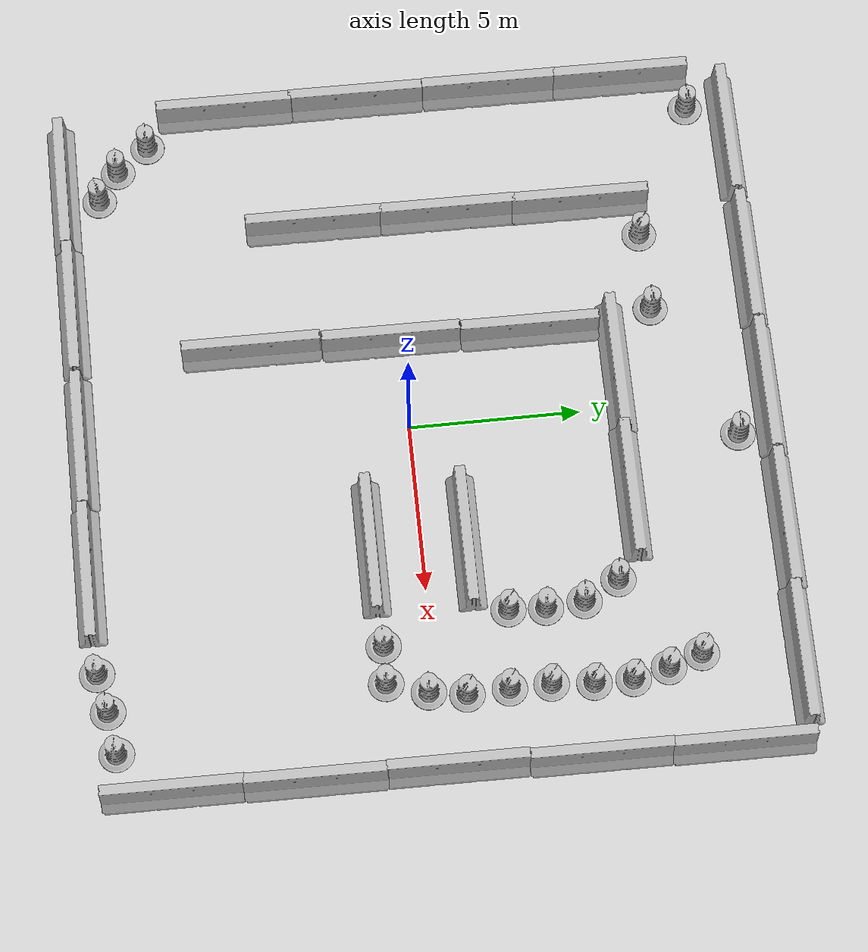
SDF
<sdf version="1.7">
 <world name="default">
  <light name="sun" type="directional">
   <pose>0 0 10 0 -0 0</pose>
   <diffuse>0.8 0.8 0.8 1</diffuse>
   <specular>0.2 0.2 0.2 1</specular>
   <attenuation>
    <range>1000</range>
    <constant>0.9</constant>
    <linear>0.01</linear>
    <quadratic>0.001</quadratic>
   </attenuation>
   <direction>-0.5 0.1 -0.9</direction>
   <spot><inner_angle>0</inner_angle><outer_angle>0</outer_angle><falloff>0</falloff></spot>
  </light>
  <model name="ground_plane">
   <static>1</static>
   <link name="link">
    <collision name="collision">
     <geometry><plane><normal>0 0 1</normal><size>100 100</size></plane></geometry>
     <surface><friction><ode><mu>100</mu><mu2>50</mu2></ode></friction></surface>
    </collision>
    <visual name="visual">
     <cast_shadows>0</cast_shadows>
     <geometry><plane><normal>0 0 1</normal><size>100 100</size></plane></geometry>
     <material>
      <script><uri>file://media/materials/scripts/gazebo.material</uri><name>Gazebo/Grey</name></script>
     </material>
    </visual>
   </link>
  </model>
  <gravity>0 0 -9.8</gravity>
  <magnetic_field>6e-06 2.3e-05 -4.2e-05</magnetic_field>
  <atmosphere type="adiabatic"/>
  <physics type="ode">
   <max_step_size>0.001</max_step_size>
   <real_time_factor>1</real_time_factor>
   <real_time_update_rate>1000</real_time_update_rate>
  </physics>
  <scene><ambient>0.4 0.4 0.4 1</ambient><background>0.7 0.7 0.7 1</background><shadows>1</shadows></scene>
  <spherical_coordinates>
   <surface_model>EARTH_WGS84</surface_model>
   <latitude_deg>0</latitude_deg>
   <longitude_deg>0</longitude_deg>
   <elevation>0</elevation>
   <heading_deg>0</heading_deg>
  </spherical_coordinates>
  <model name="Construction Barrel">
   <link name="link">
    <inertial>
     <pose>0 0 0.4 0 -0 0</pose>
     <mass>500</mass>
     <inertia><ixx>51.2096</ixx><iyy>51.2096</iyy><izz>25</izz><ixy>0</ixy><ixz>0</ixz><iyz>0</iyz></inertia>
    </inertial>
    <collision name="collision">
     <geometry><mesh><uri>model://construction_barrel/meshes/construction_barrel.dae</uri></mesh></geometry>
    </collision>
    <visual name="visual">
     <geometry><mesh><uri>model://construction_barrel/meshes/construction_barrel.dae</uri></mesh></geometry>
    </visual>
   </link>
   <pose>9.00455 -9.11137 0 0 0 -0.000247</pose>
  </model>
  <model name="Construction Barrel_0">
   <link name="link">
    <inertial>
     <pose>0 0 0.4 0 -0 0</pose>
     <mass>500</mass>
     <inertia><ixx>51.2096</ixx><iyy>51.2096</iyy><izz>25</izz><ixy>0</ixy><ixz>0</ixz><iyz>0</iyz></inertia>
    </inertial>
    <collision name="collision">
     <geometry><mesh><uri>model://construction_barrel/meshes/construction_barrel.dae</uri></mesh></geometry>
    </collision>
    <visual name="visual">
     <geometry><mesh><uri>model://construction_barrel/meshes/construction_barrel.dae</uri></mesh></geometry>
    </visual>
   </link>
   <pose>7.75315 -9.27432 0 0 0 -0.000226</pose>
  </model>
  <model name="jersey_barrier">
   <static>1</static>
   <link name="link">
    <visual name="visual">
     <geometry><mesh><uri>model://jersey_barrier/meshes/jersey_barrier.dae</uri></mesh></geometry>
    </visual>
    <collision name="upright">
     <pose>0 0 0.5715 0 -0 0</pose>
     <geometry><box><size>4.06542 0.3063 1.143</size></box></geometry>
    </collision>
    <collision name="base">
     <pose>0 0 0.032258 0 -0 0</pose>
     <geometry><box><size>4.06542 0.8107 0.064516</size></box></geometry>
    </collision>
    <collision name="base2">
     <pose>0 0 0.1 0 -0 0</pose>
     <geometry><box><size>4.06542 0.65 0.1</size></box></geometry>
    </collision>
    <collision name="base3">
     <pose>0 0 0.2 0 -0 0</pose>
     <geometry><box><size>4.06542 0.5 0.1</size></box></geometry>
    </collision>
    <collision name="left-angle">
     <pose>0 -0.224 0.2401 0.9 -0 0</pose>
     <geometry><box><size>4.06542 0.5 0.064516</size></box></geometry>
    </collision>
    <collision name="right-angle">
     <pose>0 0.224 0.2401 -0.9 0 0</pose>
     <geometry><box><size>4.06542 0.5 0.064516</size></box></geometry>
    </collision>
   </link>
   <pose>8.05184 10.4006 0 0 -0 0</pose>
  </model>
  <model name="jersey_barrier_0">
   <static>1</static>
   <link name="link">
    <visual name="visual">
     <geometry><mesh><uri>model://jersey_barrier/meshes/jersey_barrier.dae</uri></mesh></geometry>
    </visual>
    <collision name="upright">
     <pose>0 0 0.5715 0 -0 0</pose>
     <geometry><box><size>4.06542 0.3063 1.143</size></box></geometry>
    </collision>
    <collision name="base">
     <pose>0 0 0.032258 0 -0 0</pose>
     <geometry><box><size>4.06542 0.8107 0.064516</size></box></geometry>
    </collision>
    <collision name="base2">
     <pose>0 0 0.1 0 -0 0</pose>
     <geometry><box><size>4.06542 0.65 0.1</size></box></geometry>
    </collision>
    <collision name="base3">
     <pose>0 0 0.2 0 -0 0</pose>
     <geometry><box><size>4.06542 0.5 0.1</size></box></geometry>
    </collision>
    <collision name="left-angle">
     <pose>0 -0.224 0.2401 0.9 -0 0</pose>
     <geometry><box><size>4.06542 0.5 0.064516</size></box></geometry>
    </collision>
    <collision name="right-angle">
     <pose>0 0.224 0.2401 -0.9 0 0</pose>
     <geometry><box><size>4.06542 0.5 0.064516</size></box></geometry>
    </collision>
   </link>
   <pose>4.02261 10.4546 0 0 -0 0</pose>
  </model>
  <model name="jersey_barrier_0_clone">
   <static>1</static>
   <link name="link">
    <visual name="visual">
     <geometry><mesh><uri>model://jersey_barrier/meshes/jersey_barrier.dae</uri></mesh></geometry>
    </visual>
    <collision name="upright">
     <pose>0 0 0.5715 0 -0 0</pose>
     <geometry><box><size>4.06542 0.3063 1.143</size></box></geometry>
    </collision>
    <collision name="base">
     <pose>0 0 0.032258 0 -0 0</pose>
     <geometry><box><size>4.06542 0.8107 0.064516</size></box></geometry>
    </collision>
    <collision name="base2">
     <pose>0 0 0.1 0 -0 0</pose>
     <geometry><box><size>4.06542 0.65 0.1</size></box></geometry>
    </collision>
    <collision name="base3">
     <pose>0 0 0.2 0 -0 0</pose>
     <geometry><box><size>4.06542 0.5 0.1</size></box></geometry>
    </collision>
    <collision name="left-angle">
     <pose>0 -0.224 0.2401 0.9 -0 0</pose>
     <geometry><box><size>4.06542 0.5 0.064516</size></box></geometry>
    </collision>
    <collision name="right-angle">
     <pose>0 0.224 0.2401 -0.9 0 0</pose>
     <geometry><box><size>4.06542 0.5 0.064516</size></box></geometry>
    </collision>
   </link>
   <pose>-0.058648 10.4511 0 0 -0 0</pose>
  </model>
  <model name="jersey_barrier_0_clone_0">
   <static>1</static>
   <link name="link">
    <visual name="visual">
     <geometry><mesh><uri>model://jersey_barrier/meshes/jersey_barrier.dae</uri></mesh></geometry>
    </visual>
    <collision name="upright">
     <pose>0 0 0.5715 0 -0 0</pose>
     <geometry><box><size>4.06542 0.3063 1.143</size></box></geometry>
    </collision>
    <collision name="base">
     <pose>0 0 0.032258 0 -0 0</pose>
     <geometry><box><size>4.06542 0.8107 0.064516</size></box></geometry>
    </collision>
    <collision name="base2">
     <pose>0 0 0.1 0 -0 0</pose>
     <geometry><box><size>4.06542 0.65 0.1</size></box></geometry>
    </collision>
    <collision name="base3">
     <pose>0 0 0.2 0 -0 0</pose>
     <geometry><box><size>4.06542 0.5 0.1</size></box></geometry>
    </collision>
    <collision name="left-angle">
     <pose>0 -0.224 0.2401 0.9 -0 0</pose>
     <geometry><box><size>4.06542 0.5 0.064516</size></box></geometry>
    </collision>
    <collision name="right-angle">
     <pose>0 0.224 0.2401 -0.9 0 0</pose>
     <geometry><box><size>4.06542 0.5 0.064516</size></box></geometry>
    </collision>
   </link>
   <pose>-4.14054 10.4237 0 0 -0 0</pose>
  </model>
  <model name="jersey_barrier_0_clone_1">
   <static>1</static>
   <link name="link">
    <visual name="visual">
     <geometry><mesh><uri>model://jersey_barrier/meshes/jersey_barrier.dae</uri></mesh></geometry>
    </visual>
    <collision name="upright">
     <pose>0 0 0.5715 0 -0 0</pose>
     <geometry><box><size>4.06542 0.3063 1.143</size></box></geometry>
    </collision>
    <collision name="base">
     <pose>0 0 0.032258 0 -0 0</pose>
     <geometry><box><size>4.06542 0.8107 0.064516</size></box></geometry>
    </collision>
    <collision name="base2">
     <pose>0 0 0.1 0 -0 0</pose>
     <geometry><box><size>4.06542 0.65 0.1</size></box></geometry>
    </collision>
    <collision name="base3">
     <pose>0 0 0.2 0 -0 0</pose>
     <geometry><box><size>4.06542 0.5 0.1</size></box></geometry>
    </collision>
    <collision name="left-angle">
     <pose>0 -0.224 0.2401 0.9 -0 0</pose>
     <geometry><box><size>4.06542 0.5 0.064516</size></box></geometry>
    </collision>
    <collision name="right-angle">
     <pose>0 0.224 0.2401 -0.9 0 0</pose>
     <geometry><box><size>4.06542 0.5 0.064516</size></box></geometry>
    </collision>
   </link>
   <pose>-8.29169 10.3695 0 0 -0 0</pose>
  </model>
  <model name="jersey_barrier_0_clone_2">
   <static>1</static>
   <link name="link">
    <visual name="visual">
     <geometry><mesh><uri>model://jersey_barrier/meshes/jersey_barrier.dae</uri></mesh></geometry>
    </visual>
    <collision name="upright">
     <pose>0 0 0.5715 0 -0 0</pose>
     <geometry><box><size>4.06542 0.3063 1.143</size></box></geometry>
    </collision>
    <collision name="base">
     <pose>0 0 0.032258 0 -0 0</pose>
     <geometry><box><size>4.06542 0.8107 0.064516</size></box></geometry>
    </collision>
    <collision name="base2">
     <pose>0 0 0.1 0 -0 0</pose>
     <geometry><box><size>4.06542 0.65 0.1</size></box></geometry>
    </collision>
    <collision name="base3">
     <pose>0 0 0.2 0 -0 0</pose>
     <geometry><box><size>4.06542 0.5 0.1</size></box></geometry>
    </collision>
    <collision name="left-angle">
     <pose>0 -0.224 0.2401 0.9 -0 0</pose>
     <geometry><box><size>4.06542 0.5 0.064516</size></box></geometry>
    </collision>
    <collision name="right-angle">
     <pose>0 0.224 0.2401 -0.9 0 0</pose>
     <geometry><box><size>4.06542 0.5 0.064516</size></box></geometry>
    </collision>
   </link>
   <pose>3.76278 -9.55704 0 0 -0 0</pose>
  </model>
  <model name="jersey_barrier_0_clone_3">
   <static>1</static>
   <link name="link">
    <visual name="visual">
     <geometry><mesh><uri>model://jersey_barrier/meshes/jersey_barrier.dae</uri></mesh></geometry>
    </visual>
    <collision name="upright">
     <pose>0 0 0.5715 0 -0 0</pose>
     <geometry><box><size>4.06542 0.3063 1.143</size></box></geometry>
    </collision>
    <collision name="base">
     <pose>0 0 0.032258 0 -0 0</pose>
     <geometry><box><size>4.06542 0.8107 0.064516</size></box></geometry>
    </collision>
    <collision name="base2">
     <pose>0 0 0.1 0 -0 0</pose>
     <geometry><box><size>4.06542 0.65 0.1</size></box></geometry>
    </collision>
    <collision name="base3">
     <pose>0 0 0.2 0 -0 0</pose>
     <geometry><box><size>4.06542 0.5 0.1</size></box></geometry>
    </collision>
    <collision name="left-angle">
     <pose>0 -0.224 0.2401 0.9 -0 0</pose>
     <geometry><box><size>4.06542 0.5 0.064516</size></box></geometry>
    </collision>
    <collision name="right-angle">
     <pose>0 0.224 0.2401 -0.9 0 0</pose>
     <geometry><box><size>4.06542 0.5 0.064516</size></box></geometry>
    </collision>
   </link>
   <pose>-0.28043 -9.51033 0 0 -0 0</pose>
  </model>
  <model name="jersey_barrier_0_clone_4">
   <static>1</static>
   <link name="link">
    <visual name="visual">
     <geometry><mesh><uri>model://jersey_barrier/meshes/jersey_barrier.dae</uri></mesh></geometry>
    </visual>
    <collision name="upright">
     <pose>0 0 0.5715 0 -0 0</pose>
     <geometry><box><size>4.06542 0.3063 1.143</size></box></geometry>
    </collision>
    <collision name="base">
     <pose>0 0 0.032258 0 -0 0</pose>
     <geometry><box><size>4.06542 0.8107 0.064516</size></box></geometry>
    </collision>
    <collision name="base2">
     <pose>0 0 0.1 0 -0 0</pose>
     <geometry><box><size>4.06542 0.65 0.1</size></box></geometry>
    </collision>
    <collision name="base3">
     <pose>0 0 0.2 0 -0 0</pose>
     <geometry><box><size>4.06542 0.5 0.1</size></box></geometry>
    </collision>
    <collision name="left-angle">
     <pose>0 -0.224 0.2401 0.9 -0 0</pose>
     <geometry><box><size>4.06542 0.5 0.064516</size></box></geometry>
    </collision>
    <collision name="right-angle">
     <pose>0 0.224 0.2401 -0.9 0 0</pose>
     <geometry><box><size>4.06542 0.5 0.064516</size></box></geometry>
    </collision>
   </link>
   <pose>-4.42024 -9.49945 0 0 -0 0</pose>
  </model>
  <model name="jersey_barrier_0_clone_5">
   <static>1</static>
   <link name="link">
    <visual name="visual">
     <geometry><mesh><uri>model://jersey_barrier/meshes/jersey_barrier.dae</uri></mesh></geometry>
    </visual>
    <collision name="upright">
     <pose>0 0 0.5715 0 -0 0</pose>
     <geometry><box><size>4.06542 0.3063 1.143</size></box></geometry>
    </collision>
    <collision name="base">
     <pose>0 0 0.032258 0 -0 0</pose>
     <geometry><box><size>4.06542 0.8107 0.064516</size></box></geometry>
    </collision>
    <collision name="base2">
     <pose>0 0 0.1 0 -0 0</pose>
     <geometry><box><size>4.06542 0.65 0.1</size></box></geometry>
    </collision>
    <collision name="base3">
     <pose>0 0 0.2 0 -0 0</pose>
     <geometry><box><size>4.06542 0.5 0.1</size></box></geometry>
    </collision>
    <collision name="left-angle">
     <pose>0 -0.224 0.2401 0.9 -0 0</pose>
     <geometry><box><size>4.06542 0.5 0.064516</size></box></geometry>
    </collision>
    <collision name="right-angle">
     <pose>0 0.224 0.2401 -0.9 0 0</pose>
     <geometry><box><size>4.06542 0.5 0.064516</size></box></geometry>
    </collision>
   </link>
   <pose>-8.44492 -9.51984 0 0 -0 0</pose>
  </model>
  <model name="jersey_barrier_0_clone_1_clone">
   <static>1</static>
   <link name="link">
    <visual name="visual">
     <geometry><mesh><uri>model://jersey_barrier/meshes/jersey_barrier.dae</uri></mesh></geometry>
    </visual>
    <collision name="upright">
     <pose>0 0 0.5715 0 -0 0</pose>
     <geometry><box><size>4.06542 0.3063 1.143</size></box></geometry>
    </collision>
    <collision name="base">
     <pose>0 0 0.032258 0 -0 0</pose>
     <geometry><box><size>4.06542 0.8107 0.064516</size></box></geometry>
    </collision>
    <collision name="base2">
     <pose>0 0 0.1 0 -0 0</pose>
     <geometry><box><size>4.06542 0.65 0.1</size></box></geometry>
    </collision>
    <collision name="base3">
     <pose>0 0 0.2 0 -0 0</pose>
     <geometry><box><size>4.06542 0.5 0.1</size></box></geometry>
    </collision>
    <collision name="left-angle">
     <pose>0 -0.224 0.2401 0.9 -0 0</pose>
     <geometry><box><size>4.06542 0.5 0.064516</size></box></geometry>
    </collision>
    <collision name="right-angle">
     <pose>0 0.224 0.2401 -0.9 0 0</pose>
     <geometry><box><size>4.06542 0.5 0.064516</size></box></geometry>
    </collision>
   </link>
   <pose>-10.5208 7.37351 0 0 0 -1.57607</pose>
  </model>
  <model name="jersey_barrier_0_clone_1_clone_clone">
   <static>1</static>
   <link name="link">
    <visual name="visual">
     <geometry><mesh><uri>model://jersey_barrier/meshes/jersey_barrier.dae</uri></mesh></geometry>
    </visual>
    <collision name="upright">
     <pose>0 0 0.5715 0 -0 0</pose>
     <geometry><box><size>4.06542 0.3063 1.143</size></box></geometry>
    </collision>
    <collision name="base">
     <pose>0 0 0.032258 0 -0 0</pose>
     <geometry><box><size>4.06542 0.8107 0.064516</size></box></geometry>
    </collision>
    <collision name="base2">
     <pose>0 0 0.1 0 -0 0</pose>
     <geometry><box><size>4.06542 0.65 0.1</size></box></geometry>
    </collision>
    <collision name="base3">
     <pose>0 0 0.2 0 -0 0</pose>
     <geometry><box><size>4.06542 0.5 0.1</size></box></geometry>
    </collision>
    <collision name="left-angle">
     <pose>0 -0.224 0.2401 0.9 -0 0</pose>
     <geometry><box><size>4.06542 0.5 0.064516</size></box></geometry>
    </collision>
    <collision name="right-angle">
     <pose>0 0.224 0.2401 -0.9 0 0</pose>
     <geometry><box><size>4.06542 0.5 0.064516</size></box></geometry>
    </collision>
   </link>
   <pose>-10.5437 3.41102 0 0 0 -1.57607</pose>
  </model>
  <model name="jersey_barrier_0_clone_1_clone_clone_0">
   <static>1</static>
   <link name="link">
    <visual name="visual">
     <geometry><mesh><uri>model://jersey_barrier/meshes/jersey_barrier.dae</uri></mesh></geometry>
    </visual>
    <collision name="upright">
     <pose>0 0 0.5715 0 -0 0</pose>
     <geometry><box><size>4.06542 0.3063 1.143</size></box></geometry>
    </collision>
    <collision name="base">
     <pose>0 0 0.032258 0 -0 0</pose>
     <geometry><box><size>4.06542 0.8107 0.064516</size></box></geometry>
    </collision>
    <collision name="base2">
     <pose>0 0 0.1 0 -0 0</pose>
     <geometry><box><size>4.06542 0.65 0.1</size></box></geometry>
    </collision>
    <collision name="base3">
     <pose>0 0 0.2 0 -0 0</pose>
     <geometry><box><size>4.06542 0.5 0.1</size></box></geometry>
    </collision>
    <collision name="left-angle">
     <pose>0 -0.224 0.2401 0.9 -0 0</pose>
     <geometry><box><size>4.06542 0.5 0.064516</size></box></geometry>
    </collision>
    <collision name="right-angle">
     <pose>0 0.224 0.2401 -0.9 0 0</pose>
     <geometry><box><size>4.06542 0.5 0.064516</size></box></geometry>
    </collision>
   </link>
   <pose>-10.5487 -0.603088 0 0 0 -1.57607</pose>
  </model>
  <model name="jersey_barrier_0_clone_1_clone_clone_1">
   <static>1</static>
   <link name="link">
    <visual name="visual">
     <geometry><mesh><uri>model://jersey_barrier/meshes/jersey_barrier.dae</uri></mesh></geometry>
    </visual>
    <collision name="upright">
     <pose>0 0 0.5715 0 -0 0</pose>
     <geometry><box><size>4.06542 0.3063 1.143</size></box></geometry>
    </collision>
    <collision name="base">
     <pose>0 0 0.032258 0 -0 0</pose>
     <geometry><box><size>4.06542 0.8107 0.064516</size></box></geometry>
    </collision>
    <collision name="base2">
     <pose>0 0 0.1 0 -0 0</pose>
     <geometry><box><size>4.06542 0.65 0.1</size></box></geometry>
    </collision>
    <collision name="base3">
     <pose>0 0 0.2 0 -0 0</pose>
     <geometry><box><size>4.06542 0.5 0.1</size></box></geometry>
    </collision>
    <collision name="left-angle">
     <pose>0 -0.224 0.2401 0.9 -0 0</pose>
     <geometry><box><size>4.06542 0.5 0.064516</size></box></geometry>
    </collision>
    <collision name="right-angle">
     <pose>0 0.224 0.2401 -0.9 0 0</pose>
     <geometry><box><size>4.06542 0.5 0.064516</size></box></geometry>
    </collision>
   </link>
   <pose>-10.5572 -4.54183 0 0 0 -1.57607</pose>
  </model>
  <model name="jersey_barrier_0_clone_1_clone_clone_2">
   <static>1</static>
   <link name="link">
    <visual name="visual">
     <geometry><mesh><uri>model://jersey_barrier/meshes/jersey_barrier.dae</uri></mesh></geometry>
    </visual>
    <collision name="upright">
     <pose>0 0 0.5715 0 -0 0</pose>
     <geometry><box><size>4.06542 0.3063 1.143</size></box></geometry>
    </collision>
    <collision name="base">
     <pose>0 0 0.032258 0 -0 0</pose>
     <geometry><box><size>4.06542 0.8107 0.064516</size></box></geometry>
    </collision>
    <collision name="base2">
     <pose>0 0 0.1 0 -0 0</pose>
     <geometry><box><size>4.06542 0.65 0.1</size></box></geometry>
    </collision>
    <collision name="base3">
     <pose>0 0 0.2 0 -0 0</pose>
     <geometry><box><size>4.06542 0.5 0.1</size></box></geometry>
    </collision>
    <collision name="left-angle">
     <pose>0 -0.224 0.2401 0.9 -0 0</pose>
     <geometry><box><size>4.06542 0.5 0.064516</size></box></geometry>
    </collision>
    <collision name="right-angle">
     <pose>0 0.224 0.2401 -0.9 0 0</pose>
     <geometry><box><size>4.06542 0.5 0.064516</size></box></geometry>
    </collision>
   </link>
   <pose>10.4542 8.41983 0 0 0 -1.57607</pose>
  </model>
  <model name="jersey_barrier_0_clone_1_clone_clone_3">
   <static>1</static>
   <link name="link">
    <visual name="visual">
     <geometry><mesh><uri>model://jersey_barrier/meshes/jersey_barrier.dae</uri></mesh></geometry>
    </visual>
    <collision name="upright">
     <pose>0 0 0.5715 0 -0 0</pose>
     <geometry><box><size>4.06542 0.3063 1.143</size></box></geometry>
    </collision>
    <collision name="base">
     <pose>0 0 0.032258 0 -0 0</pose>
     <geometry><box><size>4.06542 0.8107 0.064516</size></box></geometry>
    </collision>
    <collision name="base2">
     <pose>0 0 0.1 0 -0 0</pose>
     <geometry><box><size>4.06542 0.65 0.1</size></box></geometry>
    </collision>
    <collision name="base3">
     <pose>0 0 0.2 0 -0 0</pose>
     <geometry><box><size>4.06542 0.5 0.1</size></box></geometry>
    </collision>
    <collision name="left-angle">
     <pose>0 -0.224 0.2401 0.9 -0 0</pose>
     <geometry><box><size>4.06542 0.5 0.064516</size></box></geometry>
    </collision>
    <collision name="right-angle">
     <pose>0 0.224 0.2401 -0.9 0 0</pose>
     <geometry><box><size>4.06542 0.5 0.064516</size></box></geometry>
    </collision>
   </link>
   <pose>10.4118 4.41634 0 0 0 -1.57607</pose>
  </model>
  <model name="jersey_barrier_0_clone_1_clone_clone_4">
   <static>1</static>
   <link name="link">
    <visual name="visual">
     <geometry><mesh><uri>model://jersey_barrier/meshes/jersey_barrier.dae</uri></mesh></geometry>
    </visual>
    <collision name="upright">
     <pose>0 0 0.5715 0 -0 0</pose>
     <geometry><box><size>4.06542 0.3063 1.143</size></box></geometry>
    </collision>
    <collision name="base">
     <pose>0 0 0.032258 0 -0 0</pose>
     <geometry><box><size>4.06542 0.8107 0.064516</size></box></geometry>
    </collision>
    <collision name="base2">
     <pose>0 0 0.1 0 -0 0</pose>
     <geometry><box><size>4.06542 0.65 0.1</size></box></geometry>
    </collision>
    <collision name="base3">
     <pose>0 0 0.2 0 -0 0</pose>
     <geometry><box><size>4.06542 0.5 0.1</size></box></geometry>
    </collision>
    <collision name="left-angle">
     <pose>0 -0.224 0.2401 0.9 -0 0</pose>
     <geometry><box><size>4.06542 0.5 0.064516</size></box></geometry>
    </collision>
    <collision name="right-angle">
     <pose>0 0.224 0.2401 -0.9 0 0</pose>
     <geometry><box><size>4.06542 0.5 0.064516</size></box></geometry>
    </collision>
   </link>
   <pose>10.3442 0.375489 0 0 0 -1.57607</pose>
  </model>
  <model name="jersey_barrier_0_clone_1_clone_clone_5">
   <static>1</static>
   <link name="link">
    <visual name="visual">
     <geometry><mesh><uri>model://jersey_barrier/meshes/jersey_barrier.dae</uri></mesh></geometry>
    </visual>
    <collision name="upright">
     <pose>0 0 0.5715 0 -0 0</pose>
     <geometry><box><size>4.06542 0.3063 1.143</size></box></geometry>
    </collision>
    <collision name="base">
     <pose>0 0 0.032258 0 -0 0</pose>
     <geometry><box><size>4.06542 0.8107 0.064516</size></box></geometry>
    </collision>
    <collision name="base2">
     <pose>0 0 0.1 0 -0 0</pose>
     <geometry><box><size>4.06542 0.65 0.1</size></box></geometry>
    </collision>
    <collision name="base3">
     <pose>0 0 0.2 0 -0 0</pose>
     <geometry><box><size>4.06542 0.5 0.1</size></box></geometry>
    </collision>
    <collision name="left-angle">
     <pose>0 -0.224 0.2401 0.9 -0 0</pose>
     <geometry><box><size>4.06542 0.5 0.064516</size></box></geometry>
    </collision>
    <collision name="right-angle">
     <pose>0 0.224 0.2401 -0.9 0 0</pose>
     <geometry><box><size>4.06542 0.5 0.064516</size></box></geometry>
    </collision>
   </link>
   <pose>10.3445 -3.60599 0 0 0 -1.57607</pose>
  </model>
  <model name="jersey_barrier_0_clone_1_clone_clone_6">
   <static>1</static>
   <link name="link">
    <visual name="visual">
     <geometry><mesh><uri>model://jersey_barrier/meshes/jersey_barrier.dae</uri></mesh></geometry>
    </visual>
    <collision name="upright">
     <pose>0 0 0.5715 0 -0 0</pose>
     <geometry><box><size>4.06542 0.3063 1.143</size></box></geometry>
    </collision>
    <collision name="base">
     <pose>0 0 0.032258 0 -0 0</pose>
     <geometry><box><size>4.06542 0.8107 0.064516</size></box></geometry>
    </collision>
    <collision name="base2">
     <pose>0 0 0.1 0 -0 0</pose>
     <geometry><box><size>4.06542 0.65 0.1</size></box></geometry>
    </collision>
    <collision name="base3">
     <pose>0 0 0.2 0 -0 0</pose>
     <geometry><box><size>4.06542 0.5 0.1</size></box></geometry>
    </collision>
    <collision name="left-angle">
     <pose>0 -0.224 0.2401 0.9 -0 0</pose>
     <geometry><box><size>4.06542 0.5 0.064516</size></box></geometry>
    </collision>
    <collision name="right-angle">
     <pose>0 0.224 0.2401 -0.9 0 0</pose>
     <geometry><box><size>4.06542 0.5 0.064516</size></box></geometry>
    </collision>
   </link>
   <pose>10.2997 -7.58706 0 0 0 -1.57607</pose>
  </model>
  <model name="jersey_barrier_0_clone_1_clone_clone_7">
   <static>1</static>
   <link name="link">
    <visual name="visual">
     <geometry><mesh><uri>model://jersey_barrier/meshes/jersey_barrier.dae</uri></mesh></geometry>
    </visual>
    <collision name="upright">
     <pose>0 0 0.5715 0 -0 0</pose>
     <geometry><box><size>4.06542 0.3063 1.143</size></box></geometry>
    </collision>
    <collision name="base">
     <pose>0 0 0.032258 0 -0 0</pose>
     <geometry><box><size>4.06542 0.8107 0.064516</size></box></geometry>
    </collision>
    <collision name="base2">
     <pose>0 0 0.1 0 -0 0</pose>
     <geometry><box><size>4.06542 0.65 0.1</size></box></geometry>
    </collision>
    <collision name="base3">
     <pose>0 0 0.2 0 -0 0</pose>
     <geometry><box><size>4.06542 0.5 0.1</size></box></geometry>
    </collision>
    <collision name="left-angle">
     <pose>0 -0.224 0.2401 0.9 -0 0</pose>
     <geometry><box><size>4.06542 0.5 0.064516</size></box></geometry>
    </collision>
    <collision name="right-angle">
     <pose>0 0.224 0.2401 -0.9 0 0</pose>
     <geometry><box><size>4.06542 0.5 0.064516</size></box></geometry>
    </collision>
   </link>
   <pose>-6.53142 5.70799 0 0 0 -1.57607</pose>
  </model>
  <model name="jersey_barrier_0_clone_1_clone_clone_8">
   <static>1</static>
   <link name="link">
    <visual name="visual">
     <geometry><mesh><uri>model://jersey_barrier/meshes/jersey_barrier.dae</uri></mesh></geometry>
    </visual>
    <collision name="upright">
     <pose>0 0 0.5715 0 -0 0</pose>
     <geometry><box><size>4.06542 0.3063 1.143</size></box></geometry>
    </collision>
    <collision name="base">
     <pose>0 0 0.032258 0 -0 0</pose>
     <geometry><box><size>4.06542 0.8107 0.064516</size></box></geometry>
    </collision>
    <collision name="base2">
     <pose>0 0 0.1 0 -0 0</pose>
     <geometry><box><size>4.06542 0.65 0.1</size></box></geometry>
    </collision>
    <collision name="base3">
     <pose>0 0 0.2 0 -0 0</pose>
     <geometry><box><size>4.06542 0.5 0.1</size></box></geometry>
    </collision>
    <collision name="left-angle">
     <pose>0 -0.224 0.2401 0.9 -0 0</pose>
     <geometry><box><size>4.06542 0.5 0.064516</size></box></geometry>
    </collision>
    <collision name="right-angle">
     <pose>0 0.224 0.2401 -0.9 0 0</pose>
     <geometry><box><size>4.06542 0.5 0.064516</size></box></geometry>
    </collision>
   </link>
   <pose>-6.56429 1.7747 0 0 0 -1.57607</pose>
  </model>
  <model name="jersey_barrier_0_clone_1_clone_clone_9">
   <static>1</static>
   <link name="link">
    <visual name="visual">
     <geometry><mesh><uri>model://jersey_barrier/meshes/jersey_barrier.dae</uri></mesh></geometry>
    </visual>
    <collision name="upright">
     <pose>0 0 0.5715 0 -0 0</pose>
     <geometry><box><size>4.06542 0.3063 1.143</size></box></geometry>
    </collision>
    <collision name="base">
     <pose>0 0 0.032258 0 -0 0</pose>
     <geometry><box><size>4.06542 0.8107 0.064516</size></box></geometry>
    </collision>
    <collision name="base2">
     <pose>0 0 0.1 0 -0 0</pose>
     <geometry><box><size>4.06542 0.65 0.1</size></box></geometry>
    </collision>
    <collision name="base3">
     <pose>0 0 0.2 0 -0 0</pose>
     <geometry><box><size>4.06542 0.5 0.1</size></box></geometry>
    </collision>
    <collision name="left-angle">
     <pose>0 -0.224 0.2401 0.9 -0 0</pose>
     <geometry><box><size>4.06542 0.5 0.064516</size></box></geometry>
    </collision>
    <collision name="right-angle">
     <pose>0 0.224 0.2401 -0.9 0 0</pose>
     <geometry><box><size>4.06542 0.5 0.064516</size></box></geometry>
    </collision>
   </link>
   <pose>-6.5875 -2.18548 0 0 0 -1.57607</pose>
  </model>
  <model name="Construction Barrel_0_clone_10">
   <link name="link">
    <inertial>
     <pose>0 0 0.4 0 -0 0</pose>
     <mass>500</mass>
     <inertia><ixx>51.2096</ixx><iyy>51.2096</iyy><izz>25</izz><ixy>0</ixy><ixz>0</ixz><iyz>0</iyz></inertia>
    </inertial>
    <collision name="collision">
     <geometry><mesh><uri>model://construction_barrel/meshes/construction_barrel.dae</uri></mesh></geometry>
    </collision>
    <visual name="visual">
     <geometry><mesh><uri>model://construction_barrel/meshes/construction_barrel.dae</uri></mesh></geometry>
    </visual>
   </link>
   <pose>6.56972 -1.35972 -2e-06 -7e-06 -4e-06 -0.00019</pose>
  </model>
  <model name="Construction Barrel_0_clone_11">
   <link name="link">
    <inertial>
     <pose>0 0 0.4 0 -0 0</pose>
     <mass>500</mass>
     <inertia><ixx>51.2096</ixx><iyy>51.2096</iyy><izz>25</izz><ixy>0</ixy><ixz>0</ixz><iyz>0</iyz></inertia>
    </inertial>
    <collision name="collision">
     <geometry><mesh><uri>model://construction_barrel/meshes/construction_barrel.dae</uri></mesh></geometry>
    </collision>
    <visual name="visual">
     <geometry><mesh><uri>model://construction_barrel/meshes/construction_barrel.dae</uri></mesh></geometry>
    </visual>
   </link>
   <pose>7.68552 -1.3928 -2e-06 1e-06 8e-06 -0.000205</pose>
  </model>
  <model name="Construction Barrel_0_clone_13">
   <link name="link">
    <inertial>
     <pose>0 0 0.4 0 -0 0</pose>
     <mass>500</mass>
     <inertia><ixx>51.2096</ixx><iyy>51.2096</iyy><izz>25</izz><ixy>0</ixy><ixz>0</ixz><iyz>0</iyz></inertia>
    </inertial>
    <collision name="collision">
     <geometry><mesh><uri>model://construction_barrel/meshes/construction_barrel.dae</uri></mesh></geometry>
    </collision>
    <visual name="visual">
     <geometry><mesh><uri>model://construction_barrel/meshes/construction_barrel.dae</uri></mesh></geometry>
    </visual>
   </link>
   <pose>5.82798 2.28547 -2e-06 -8e-06 -4e-06 -0.596409</pose>
  </model>
  <model name="Construction Barrel_0_clone_15">
   <link name="link">
    <inertial>
     <pose>0 0 0.4 0 -0 0</pose>
     <mass>500</mass>
     <inertia><ixx>51.2096</ixx><iyy>51.2096</iyy><izz>25</izz><ixy>0</ixy><ixz>0</ixz><iyz>0</iyz></inertia>
    </inertial>
    <collision name="collision">
     <geometry><mesh><uri>model://construction_barrel/meshes/construction_barrel.dae</uri></mesh></geometry>
    </collision>
    <visual name="visual">
     <geometry><mesh><uri>model://construction_barrel/meshes/construction_barrel.dae</uri></mesh></geometry>
    </visual>
   </link>
   <pose>5.88463 3.35797 -2e-06 7e-06 -2e-06 -0.08391</pose>
  </model>
  <model name="Construction Barrel_0_clone_16">
   <link name="link">
    <inertial>
     <pose>0 0 0.4 0 -0 0</pose>
     <mass>500</mass>
     <inertia><ixx>51.2096</ixx><iyy>51.2096</iyy><izz>25</izz><ixy>0</ixy><ixz>0</ixz><iyz>0</iyz></inertia>
    </inertial>
    <collision name="collision">
     <geometry><mesh><uri>model://construction_barrel/meshes/construction_barrel.dae</uri></mesh></geometry>
    </collision>
    <visual name="visual">
     <geometry><mesh><uri>model://construction_barrel/meshes/construction_barrel.dae</uri></mesh></geometry>
    </visual>
   </link>
   <pose>8.04958 -0.213682 -2e-06 0 7e-06 -0.000226</pose>
  </model>
  <model name="Construction Barrel_0_clone_17">
   <link name="link">
    <inertial>
     <pose>0 0 0.4 0 -0 0</pose>
     <mass>500</mass>
     <inertia><ixx>51.2096</ixx><iyy>51.2096</iyy><izz>25</izz><ixy>0</ixy><ixz>0</ixz><iyz>0</iyz></inertia>
    </inertial>
    <collision name="collision">
     <geometry><mesh><uri>model://construction_barrel/meshes/construction_barrel.dae</uri></mesh></geometry>
    </collision>
    <visual name="visual">
     <geometry><mesh><uri>model://construction_barrel/meshes/construction_barrel.dae</uri></mesh></geometry>
    </visual>
   </link>
   <pose>5.79147 4.47665 -2e-06 7e-06 -4e-06 -0.001838</pose>
  </model>
  <model name="jersey_barrier_0_clone_clone">
   <static>1</static>
   <link name="link">
    <visual name="visual">
     <geometry><mesh><uri>model://jersey_barrier/meshes/jersey_barrier.dae</uri></mesh></geometry>
    </visual>
    <collision name="upright">
     <pose>0 0 0.5715 0 -0 0</pose>
     <geometry><box><size>4.06542 0.3063 1.143</size></box></geometry>
    </collision>
    <collision name="base">
     <pose>0 0 0.032258 0 -0 0</pose>
     <geometry><box><size>4.06542 0.8107 0.064516</size></box></geometry>
    </collision>
    <collision name="base2">
     <pose>0 0 0.1 0 -0 0</pose>
     <geometry><box><size>4.06542 0.65 0.1</size></box></geometry>
    </collision>
    <collision name="base3">
     <pose>0 0 0.2 0 -0 0</pose>
     <geometry><box><size>4.06542 0.5 0.1</size></box></geometry>
    </collision>
    <collision name="left-angle">
     <pose>0 -0.224 0.2401 0.9 -0 0</pose>
     <geometry><box><size>4.06542 0.5 0.064516</size></box></geometry>
    </collision>
    <collision name="right-angle">
     <pose>0 0.224 0.2401 -0.9 0 0</pose>
     <geometry><box><size>4.06542 0.5 0.064516</size></box></geometry>
    </collision>
   </link>
   <pose>2.72599 6.16506 0 0 -0 0</pose>
  </model>
  <model name="jersey_barrier_0_clone_clone_0">
   <static>1</static>
   <link name="link">
    <visual name="visual">
     <geometry><mesh><uri>model://jersey_barrier/meshes/jersey_barrier.dae</uri></mesh></geometry>
    </visual>
    <collision name="upright">
     <pose>0 0 0.5715 0 -0 0</pose>
     <geometry><box><size>4.06542 0.3063 1.143</size></box></geometry>
    </collision>
    <collision name="base">
     <pose>0 0 0.032258 0 -0 0</pose>
     <geometry><box><size>4.06542 0.8107 0.064516</size></box></geometry>
    </collision>
    <collision name="base2">
     <pose>0 0 0.1 0 -0 0</pose>
     <geometry><box><size>4.06542 0.65 0.1</size></box></geometry>
    </collision>
    <collision name="base3">
     <pose>0 0 0.2 0 -0 0</pose>
     <geometry><box><size>4.06542 0.5 0.1</size></box></geometry>
    </collision>
    <collision name="left-angle">
     <pose>0 -0.224 0.2401 0.9 -0 0</pose>
     <geometry><box><size>4.06542 0.5 0.064516</size></box></geometry>
    </collision>
    <collision name="right-angle">
     <pose>0 0.224 0.2401 -0.9 0 0</pose>
     <geometry><box><size>4.06542 0.5 0.064516</size></box></geometry>
    </collision>
   </link>
   <pose>-1.1992 6.20448 0 0 -0 0</pose>
  </model>
  <model name="jersey_barrier_0_clone_1_clone_clone_3_clone">
   <static>1</static>
   <link name="link">
    <visual name="visual">
     <geometry><mesh><uri>model://jersey_barrier/meshes/jersey_barrier.dae</uri></mesh></geometry>
    </visual>
    <collision name="upright">
     <pose>0 0 0.5715 0 -0 0</pose>
     <geometry><box><size>4.06542 0.3063 1.143</size></box></geometry>
    </collision>
    <collision name="base">
     <pose>0 0 0.032258 0 -0 0</pose>
     <geometry><box><size>4.06542 0.8107 0.064516</size></box></geometry>
    </collision>
    <collision name="base2">
     <pose>0 0 0.1 0 -0 0</pose>
     <geometry><box><size>4.06542 0.65 0.1</size></box></geometry>
    </collision>
    <collision name="base3">
     <pose>0 0 0.2 0 -0 0</pose>
     <geometry><box><size>4.06542 0.5 0.1</size></box></geometry>
    </collision>
    <collision name="left-angle">
     <pose>0 -0.224 0.2401 0.9 -0 0</pose>
     <geometry><box><size>4.06542 0.5 0.064516</size></box></geometry>
    </collision>
    <collision name="right-angle">
     <pose>0 0.224 0.2401 -0.9 0 0</pose>
     <geometry><box><size>4.06542 0.5 0.064516</size></box></geometry>
    </collision>
   </link>
   <pose>-2.60734 3.79658 0 0 0 -1.57607</pose>
  </model>
  <model name="jersey_barrier_0_clone_1_clone_clone_3_clone_0">
   <static>1</static>
   <link name="link">
    <visual name="visual">
     <geometry><mesh><uri>model://jersey_barrier/meshes/jersey_barrier.dae</uri></mesh></geometry>
    </visual>
    <collision name="upright">
     <pose>0 0 0.5715 0 -0 0</pose>
     <geometry><box><size>4.06542 0.3063 1.143</size></box></geometry>
    </collision>
    <collision name="base">
     <pose>0 0 0.032258 0 -0 0</pose>
     <geometry><box><size>4.06542 0.8107 0.064516</size></box></geometry>
    </collision>
    <collision name="base2">
     <pose>0 0 0.1 0 -0 0</pose>
     <geometry><box><size>4.06542 0.65 0.1</size></box></geometry>
    </collision>
    <collision name="base3">
     <pose>0 0 0.2 0 -0 0</pose>
     <geometry><box><size>4.06542 0.5 0.1</size></box></geometry>
    </collision>
    <collision name="left-angle">
     <pose>0 -0.224 0.2401 0.9 -0 0</pose>
     <geometry><box><size>4.06542 0.5 0.064516</size></box></geometry>
    </collision>
    <collision name="right-angle">
     <pose>0 0.224 0.2401 -0.9 0 0</pose>
     <geometry><box><size>4.06542 0.5 0.064516</size></box></geometry>
    </collision>
   </link>
   <pose>-2.67094 -0.270678 0 0 0 -1.57607</pose>
  </model>
  <model name="jersey_barrier_0_clone_1_clone_clone_3_clone_1">
   <static>1</static>
   <link name="link">
    <visual name="visual">
     <geometry><mesh><uri>model://jersey_barrier/meshes/jersey_barrier.dae</uri></mesh></geometry>
    </visual>
    <collision name="upright">
     <pose>0 0 0.5715 0 -0 0</pose>
     <geometry><box><size>4.06542 0.3063 1.143</size></box></geometry>
    </collision>
    <collision name="base">
     <pose>0 0 0.032258 0 -0 0</pose>
     <geometry><box><size>4.06542 0.8107 0.064516</size></box></geometry>
    </collision>
    <collision name="base2">
     <pose>0 0 0.1 0 -0 0</pose>
     <geometry><box><size>4.06542 0.65 0.1</size></box></geometry>
    </collision>
    <collision name="base3">
     <pose>0 0 0.2 0 -0 0</pose>
     <geometry><box><size>4.06542 0.5 0.1</size></box></geometry>
    </collision>
    <collision name="left-angle">
     <pose>0 -0.224 0.2401 0.9 -0 0</pose>
     <geometry><box><size>4.06542 0.5 0.064516</size></box></geometry>
    </collision>
    <collision name="right-angle">
     <pose>0 0.224 0.2401 -0.9 0 0</pose>
     <geometry><box><size>4.06542 0.5 0.064516</size></box></geometry>
    </collision>
   </link>
   <pose>-2.74952 -4.36065 0 0 0 -1.57607</pose>
  </model>
  <model name="Construction Barrel_0_clone_clone_0">
   <link name="link">
    <inertial>
     <pose>0 0 0.4 0 -0 0</pose>
     <mass>500</mass>
     <inertia><ixx>51.2096</ixx><iyy>51.2096</iyy><izz>25</izz><ixy>0</ixy><ixz>0</ixz><iyz>0</iyz></inertia>
    </inertial>
    <collision name="collision">
     <geometry><mesh><uri>model://construction_barrel/meshes/construction_barrel.dae</uri></mesh></geometry>
    </collision>
    <visual name="visual">
     <geometry><mesh><uri>model://construction_barrel/meshes/construction_barrel.dae</uri></mesh></geometry>
    </visual>
   </link>
   <pose>5.23164 5.51515 -2e-06 0 7e-06 -0.000227</pose>
  </model>
  <model name="Construction Barrel_0_clone_clone_1">
   <link name="link">
    <inertial>
     <pose>0 0 0.4 0 -0 0</pose>
     <mass>500</mass>
     <inertia><ixx>51.2096</ixx><iyy>51.2096</iyy><izz>25</izz><ixy>0</ixy><ixz>0</ixz><iyz>0</iyz></inertia>
    </inertial>
    <collision name="collision">
     <geometry><mesh><uri>model://construction_barrel/meshes/construction_barrel.dae</uri></mesh></geometry>
    </collision>
    <visual name="visual">
     <geometry><mesh><uri>model://construction_barrel/meshes/construction_barrel.dae</uri></mesh></geometry>
    </visual>
   </link>
   <pose>1.12951 9.5059 0 0 0 -0.000218</pose>
  </model>
  <model name="Construction Barrel_0_clone_clone_2">
   <link name="link">
    <inertial>
     <pose>0 0 0.4 0 -0 0</pose>
     <mass>500</mass>
     <inertia><ixx>51.2096</ixx><iyy>51.2096</iyy><izz>25</izz><ixy>0</ixy><ixz>0</ixz><iyz>0</iyz></inertia>
    </inertial>
    <collision name="collision">
     <geometry><mesh><uri>model://construction_barrel/meshes/construction_barrel.dae</uri></mesh></geometry>
    </collision>
    <visual name="visual">
     <geometry><mesh><uri>model://construction_barrel/meshes/construction_barrel.dae</uri></mesh></geometry>
    </visual>
   </link>
   <pose>-3.03404 7.44174 -1e-06 -3e-06 -1e-06 -0.000227</pose>
  </model>
  <model name="Construction Barrel_0_clone_clone_3">
   <link name="link">
    <inertial>
     <pose>0 0 0.4 0 -0 0</pose>
     <mass>500</mass>
     <inertia><ixx>51.2096</ixx><iyy>51.2096</iyy><izz>25</izz><ixy>0</ixy><ixz>0</ixz><iyz>0</iyz></inertia>
    </inertial>
    <collision name="collision">
     <geometry><mesh><uri>model://construction_barrel/meshes/construction_barrel.dae</uri></mesh></geometry>
    </collision>
    <visual name="visual">
     <geometry><mesh><uri>model://construction_barrel/meshes/construction_barrel.dae</uri></mesh></geometry>
    </visual>
   </link>
   <pose>-9.43887 9.27782 -2e-06 0 7e-06 -0.000225</pose>
  </model>
  <model name="Construction Barrel_0_clone_clone_4">
   <link name="link">
    <inertial>
     <pose>0 0 0.4 0 -0 0</pose>
     <mass>500</mass>
     <inertia><ixx>51.2096</ixx><iyy>51.2096</iyy><izz>25</izz><ixy>0</ixy><ixz>0</ixz><iyz>0</iyz></inertia>
    </inertial>
    <collision name="collision">
     <geometry><mesh><uri>model://construction_barrel/meshes/construction_barrel.dae</uri></mesh></geometry>
    </collision>
    <visual name="visual">
     <geometry><mesh><uri>model://construction_barrel/meshes/construction_barrel.dae</uri></mesh></geometry>
    </visual>
   </link>
   <pose>-9.70925 -6.95282 -2e-06 0 7e-06 -0.000228</pose>
  </model>
  <model name="Construction Barrel_0_clone_clone_5">
   <link name="link">
    <inertial>
     <pose>0 0 0.4 0 -0 0</pose>
     <mass>500</mass>
     <inertia><ixx>51.2096</ixx><iyy>51.2096</iyy><izz>25</izz><ixy>0</ixy><ixz>0</ixz><iyz>0</iyz></inertia>
    </inertial>
    <collision name="collision">
     <geometry><mesh><uri>model://construction_barrel/meshes/construction_barrel.dae</uri></mesh></geometry>
    </collision>
    <visual name="visual">
     <geometry><mesh><uri>model://construction_barrel/meshes/construction_barrel.dae</uri></mesh></geometry>
    </visual>
   </link>
   <pose>-8.96681 -7.88834 -2e-06 0 6e-06 -0.000218</pose>
  </model>
  <model name="Construction Barrel_0_clone_clone_6">
   <link name="link">
    <inertial>
     <pose>0 0 0.4 0 -0 0</pose>
     <mass>500</mass>
     <inertia><ixx>51.2096</ixx><iyy>51.2096</iyy><izz>25</izz><ixy>0</ixy><ixz>0</ixz><iyz>0</iyz></inertia>
    </inertial>
    <collision name="collision">
     <geometry><mesh><uri>model://construction_barrel/meshes/construction_barrel.dae</uri></mesh></geometry>
    </collision>
    <visual name="visual">
     <geometry><mesh><uri>model://construction_barrel/meshes/construction_barrel.dae</uri></mesh></geometry>
    </visual>
   </link>
   <pose>-8.07812 -8.49657 -2e-06 -8e-06 -0 0.231602</pose>
  </model>
  <model name="Construction Barrel_0_clone_clone_7">
   <link name="link">
    <inertial>
     <pose>0 0 0.4 0 -0 0</pose>
     <mass>500</mass>
     <inertia><ixx>51.2096</ixx><iyy>51.2096</iyy><izz>25</izz><ixy>0</ixy><ixz>0</ixz><iyz>0</iyz></inertia>
    </inertial>
    <collision name="collision">
     <geometry><mesh><uri>model://construction_barrel/meshes/construction_barrel.dae</uri></mesh></geometry>
    </collision>
    <visual name="visual">
     <geometry><mesh><uri>model://construction_barrel/meshes/construction_barrel.dae</uri></mesh></geometry>
    </visual>
   </link>
   <pose>6.61686 -9.51152 -2e-06 0 7e-06 -0.000243</pose>
  </model>
  <model name="jersey_barrier_0_clone_3_clone">
   <static>1</static>
   <link name="link">
    <visual name="visual">
     <geometry><mesh><uri>model://jersey_barrier/meshes/jersey_barrier.dae</uri></mesh></geometry>
    </visual>
    <collision name="upright">
     <pose>0 0 0.5715 0 -0 0</pose>
     <geometry><box><size>4.06542 0.3063 1.143</size></box></geometry>
    </collision>
    <collision name="base">
     <pose>0 0 0.032258 0 -0 0</pose>
     <geometry><box><size>4.06542 0.8107 0.064516</size></box></geometry>
    </collision>
    <collision name="base2">
     <pose>0 0 0.1 0 -0 0</pose>
     <geometry><box><size>4.06542 0.65 0.1</size></box></geometry>
    </collision>
    <collision name="base3">
     <pose>0 0 0.2 0 -0 0</pose>
     <geometry><box><size>4.06542 0.5 0.1</size></box></geometry>
    </collision>
    <collision name="left-angle">
     <pose>0 -0.224 0.2401 0.9 -0 0</pose>
     <geometry><box><size>4.06542 0.5 0.064516</size></box></geometry>
    </collision>
    <collision name="right-angle">
     <pose>0 0.224 0.2401 -0.9 0 0</pose>
     <geometry><box><size>4.06542 0.5 0.064516</size></box></geometry>
    </collision>
   </link>
   <pose>3.6905 -1.44802 0 0 -0 0</pose>
  </model>
  <model name="jersey_barrier_0_clone_3_clone_0">
   <static>1</static>
   <link name="link">
    <visual name="visual">
     <geometry><mesh><uri>model://jersey_barrier/meshes/jersey_barrier.dae</uri></mesh></geometry>
    </visual>
    <collision name="upright">
     <pose>0 0 0.5715 0 -0 0</pose>
     <geometry><box><size>4.06542 0.3063 1.143</size></box></geometry>
    </collision>
    <collision name="base">
     <pose>0 0 0.032258 0 -0 0</pose>
     <geometry><box><size>4.06542 0.8107 0.064516</size></box></geometry>
    </collision>
    <collision name="base2">
     <pose>0 0 0.1 0 -0 0</pose>
     <geometry><box><size>4.06542 0.65 0.1</size></box></geometry>
    </collision>
    <collision name="base3">
     <pose>0 0 0.2 0 -0 0</pose>
     <geometry><box><size>4.06542 0.5 0.1</size></box></geometry>
    </collision>
    <collision name="left-angle">
     <pose>0 -0.224 0.2401 0.9 -0 0</pose>
     <geometry><box><size>4.06542 0.5 0.064516</size></box></geometry>
    </collision>
    <collision name="right-angle">
     <pose>0 0.224 0.2401 -0.9 0 0</pose>
     <geometry><box><size>4.06542 0.5 0.064516</size></box></geometry>
    </collision>
   </link>
   <pose>3.74626 1.29294 0 0 -0 0</pose>
  </model>
  <model name="Construction Barrel_0_clone_13_clone">
   <link name="link">
    <inertial>
     <pose>0 0 0.4 0 -0 0</pose>
     <mass>500</mass>
     <inertia><ixx>51.2096</ixx><iyy>51.2096</iyy><izz>25</izz><ixy>0</ixy><ixz>0</ixz><iyz>0</iyz></inertia>
    </inertial>
    <collision name="collision">
     <geometry><mesh><uri>model://construction_barrel/meshes/construction_barrel.dae</uri></mesh></geometry>
    </collision>
    <visual name="visual">
     <geometry><mesh><uri>model://construction_barrel/meshes/construction_barrel.dae</uri></mesh></geometry>
    </visual>
   </link>
   <pose>8.21648 0.862731 -1e-06 -0 4e-06 -0.600712</pose>
  </model>
  <model name="Construction Barrel_0_clone_13_clone_0">
   <link name="link">
    <inertial>
     <pose>0 0 0.4 0 -0 0</pose>
     <mass>500</mass>
     <inertia><ixx>51.2096</ixx><iyy>51.2096</iyy><izz>25</izz><ixy>0</ixy><ixz>0</ixz><iyz>0</iyz></inertia>
    </inertial>
    <collision name="collision">
     <geometry><mesh><uri>model://construction_barrel/meshes/construction_barrel.dae</uri></mesh></geometry>
    </collision>
    <visual name="visual">
     <geometry><mesh><uri>model://construction_barrel/meshes/construction_barrel.dae</uri></mesh></geometry>
    </visual>
   </link>
   <pose>8.15868 2.07638 -2e-06 -8e-06 -4e-06 -0.596398</pose>
  </model>
  <model name="Construction Barrel_0_clone_13_clone_1">
   <link name="link">
    <inertial>
     <pose>0 0 0.4 0 -0 0</pose>
     <mass>500</mass>
     <inertia><ixx>51.2096</ixx><iyy>51.2096</iyy><izz>25</izz><ixy>0</ixy><ixz>0</ixz><iyz>0</iyz></inertia>
    </inertial>
    <collision name="collision">
     <geometry><mesh><uri>model://construction_barrel/meshes/construction_barrel.dae</uri></mesh></geometry>
    </collision>
    <visual name="visual">
     <geometry><mesh><uri>model://construction_barrel/meshes/construction_barrel.dae</uri></mesh></geometry>
    </visual>
   </link>
   <pose>8.13578 3.26457 -1e-06 0 4e-06 -0.596399</pose>
  </model>
  <model name="Construction Barrel_0_clone_13_clone_2">
   <link name="link">
    <inertial>
     <pose>0 0 0.4 0 -0 0</pose>
     <mass>500</mass>
     <inertia><ixx>51.2096</ixx><iyy>51.2096</iyy><izz>25</izz><ixy>0</ixy><ixz>0</ixz><iyz>0</iyz></inertia>
    </inertial>
    <collision name="collision">
     <geometry><mesh><uri>model://construction_barrel/meshes/construction_barrel.dae</uri></mesh></geometry>
    </collision>
    <visual name="visual">
     <geometry><mesh><uri>model://construction_barrel/meshes/construction_barrel.dae</uri></mesh></geometry>
    </visual>
   </link>
   <pose>8.22523 4.47469 -2e-06 7e-06 -4e-06 -0.596395</pose>
  </model>
  <model name="Construction Barrel_0_clone_13_clone_4">
   <link name="link">
    <inertial>
     <pose>0 0 0.4 0 -0 0</pose>
     <mass>500</mass>
     <inertia><ixx>51.2096</ixx><iyy>51.2096</iyy><izz>25</izz><ixy>0</ixy><ixz>0</ixz><iyz>0</iyz></inertia>
    </inertial>
    <collision name="collision">
     <geometry><mesh><uri>model://construction_barrel/meshes/construction_barrel.dae</uri></mesh></geometry>
    </collision>
    <visual name="visual">
     <geometry><mesh><uri>model://construction_barrel/meshes/construction_barrel.dae</uri></mesh></geometry>
    </visual>
   </link>
   <pose>-5.43862 7.39766 -2e-06 7e-06 -4e-06 -0.596403</pose>
  </model>
  <model name="Construction Barrel_0_clone_13_clone_2_clone">
   <link name="link">
    <inertial>
     <pose>0 0 0.4 0 -0 0</pose>
     <mass>500</mass>
     <inertia><ixx>51.2096</ixx><iyy>51.2096</iyy><izz>25</izz><ixy>0</ixy><ixz>0</ixz><iyz>0</iyz></inertia>
    </inertial>
    <collision name="collision">
     <geometry><mesh><uri>model://construction_barrel/meshes/construction_barrel.dae</uri></mesh></geometry>
    </collision>
    <visual name="visual">
     <geometry><mesh><uri>model://construction_barrel/meshes/construction_barrel.dae</uri></mesh></geometry>
    </visual>
   </link>
   <pose>8.22506 5.59214 -1e-06 0 4e-06 -0.596391</pose>
  </model>
  <model name="Construction Barrel_0_clone_13_clone_2_clone_0">
   <link name="link">
    <inertial>
     <pose>0 0 0.4 0 -0 0</pose>
     <mass>500</mass>
     <inertia><ixx>51.2096</ixx><iyy>51.2096</iyy><izz>25</izz><ixy>0</ixy><ixz>0</ixz><iyz>0</iyz></inertia>
    </inertial>
    <collision name="collision">
     <geometry><mesh><uri>model://construction_barrel/meshes/construction_barrel.dae</uri></mesh></geometry>
    </collision>
    <visual name="visual">
     <geometry><mesh><uri>model://construction_barrel/meshes/construction_barrel.dae</uri></mesh></geometry>
    </visual>
   </link>
   <pose>7.97584 6.63122 -2e-06 7e-06 -4e-06 -0.596386</pose>
  </model>
  <model name="Construction Barrel_0_clone_13_clone_2_clone_1">
   <link name="link">
    <inertial>
     <pose>0 0 0.4 0 -0 0</pose>
     <mass>500</mass>
     <inertia><ixx>51.2096</ixx><iyy>51.2096</iyy><izz>25</izz><ixy>0</ixy><ixz>0</ixz><iyz>0</iyz></inertia>
    </inertial>
    <collision name="collision">
     <geometry><mesh><uri>model://construction_barrel/meshes/construction_barrel.dae</uri></mesh></geometry>
    </collision>
    <visual name="visual">
     <geometry><mesh><uri>model://construction_barrel/meshes/construction_barrel.dae</uri></mesh></geometry>
    </visual>
   </link>
   <pose>7.65443 7.6112 -2e-06 -8e-06 -4e-06 -0.596382</pose>
  </model>
 </world>
</sdf>
